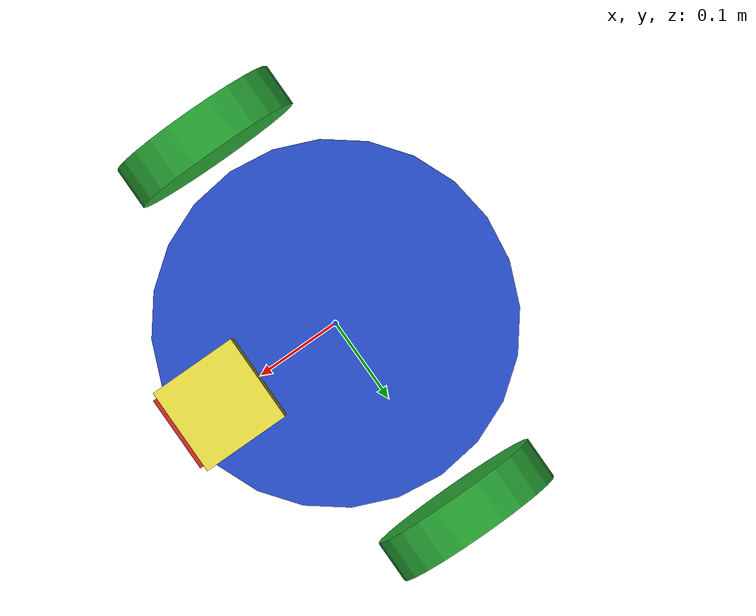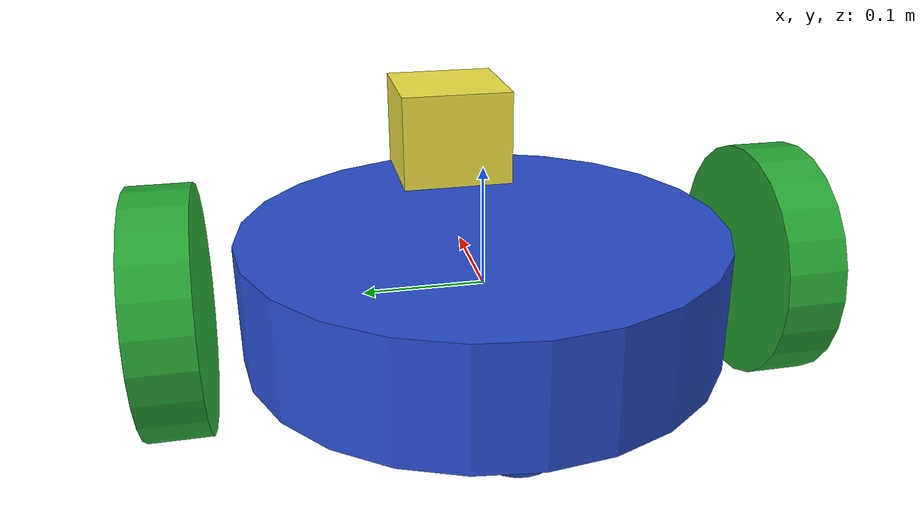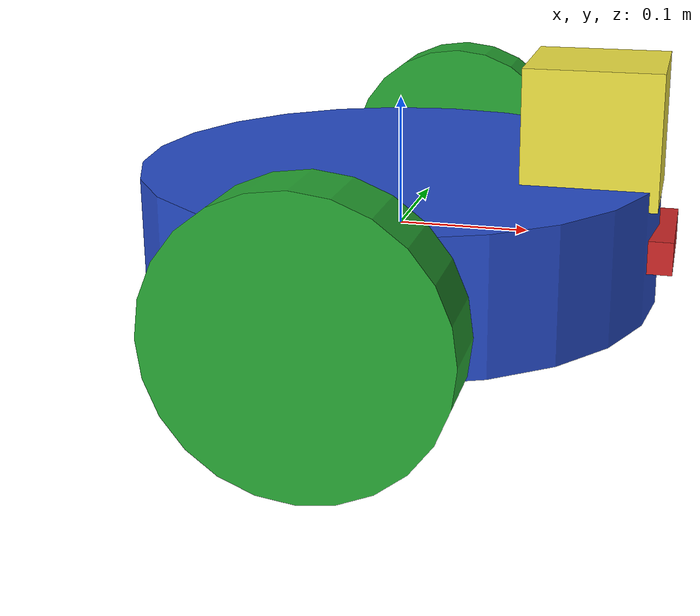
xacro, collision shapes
<?xml version='1.0'?>

<robot name="circle_bot_depth" xmlns:xacro="http://www.ros.org/wiki/xacro">
  <xacro:include filename="$(find slam_project)/urdf/circle_bot_depth.gazebo" />
  <link name="robot_footprint"></link>

  <joint name="robot_footprint_joint" type="fixed">
    <origin xyz="0 0 0" rpy="0 0 0" />
    <parent link="robot_footprint"/>
    <child link="chassis" />
  </joint>

  <joint type="fixed" name="camera_joint">
    <origin xyz="0.2 0 0" rpy="0 0 0"/>
    <child link="camera_link"/>
    <parent link="chassis"/>
  </joint>

  <joint name="camera_optical_joint" type="fixed">
    <origin xyz="0 0 0" rpy="-1.5707 0 -1.5707"/>
    <parent link="camera_link"/>
    <child link="camera_link_optical"/>
  </joint>

  <link name="camera_link_optical">
  </link>

 <link name='camera_link'>
    <inertial>
      <mass value="0.56"/>
      <inertia
          ixx="0.004" ixy="0" ixz="0"
          iyy="0.0005" iyz="0"
          izz="0.004"
      />
    </inertial>
    <collision name='camera_collision'>
      <origin xyz="0.0 0 0" rpy="0 0 0"/>
      <geometry>
        <box size="0.025 0.090 0.025"/>
      </geometry>
    </collision>
    <visual name='camera_visual'>
      <origin xyz="0.0 0 0" rpy="0 0 0"/>
      <geometry>
        <mesh filename="package://slam_project/meshes/realsense.dae" />
      </geometry>
    </visual>
  </link>

  <joint type="fixed" name="hokuyo_joint">
    <origin xyz="0.15 0 0.085" rpy="0 0 0"/>
    <child link="hokuyo"/>
    <parent link="chassis"/>
  </joint>

 <link name='hokuyo'>
    <inertial>
      <mass value="0.1"/>
      <inertia
          ixx="1e-6" ixy="0" ixz="0"
          iyy="1e-6" iyz="0"
          izz="1e-6"
      />
    </inertial>
    <collision name='hokuyo_collision'>
      <origin xyz="0.0 0 0" rpy="0 0 0"/>
      <geometry>
        <box size="0.1 0.1 0.1"/>
      </geometry>
    </collision>
    <visual name='hokuyo_visual'>
      <origin xyz="0.0 0 0" rpy="0 0 0"/>
      <geometry>
        <mesh filename="package://slam_project/meshes/hokuyo.dae"/>
      </geometry>
    </visual>
  </link>

  <joint type="continuous" name="left_wheel_hinge">
    <origin xyz="0 0.25 0" rpy="0 0 0"/>
    <child link="left_wheel"/>
    <parent link="chassis"/>
    <axis xyz="0 1 0" rpy="0 0 0"/>
    <limit effort="10000" velocity="1000"/>
    <dynamics damping="1.0" friction="1.0"/>
  </joint>

 <link name='left_wheel'>
    <inertial>
      <mass value="5.0"/>
      <origin xyz="0.0 0 0" rpy="0 1.5707 1.5707"/>
      <inertia
          ixx="0.1" ixy="0" ixz="0"
          iyy="0.1" iyz="0"
          izz="0.1"
      />
    </inertial>

    <collision name='left_wheel_collision'>
      <origin xyz="0 0 0" rpy="0 1.5707 1.5707"/>
      <geometry>
        <cylinder radius="0.1" length="0.05"/>
      </geometry>
    </collision>

    <visual name='left_wheel_visual'>
      <origin xyz="0 0 0" rpy="0 1.5707 1.5707"/>
      <geometry>
        <cylinder radius="0.1" length="0.05"/>
      </geometry>
    </visual>

  </link>

  <joint type="continuous" name="right_wheel_hinge">
    <origin xyz="0 -0.25 0" rpy="0 0 0"/>
    <child link="right_wheel"/>
    <parent link="chassis"/>
    <axis xyz="0 1 0" rpy="0 0 0"/>
    <limit effort="10000" velocity="1000"/>
    <dynamics damping="1.0" friction="1.0"/>
  </joint>

 <link name='right_wheel'>
    <inertial>
      <mass value="5.0"/>
      <origin xyz="0.0 0 0" rpy="0 1.5707 1.5707"/>
      <inertia
          ixx="0.1" ixy="0" ixz="0"
          iyy="0.1" iyz="0"
          izz="0.1"
      />
    </inertial>

    <collision name='right_wheel_collision'>
      <origin xyz="0 0 0" rpy="0 1.5707 1.5707"/>
      <geometry>
        <cylinder radius="0.1" length="0.05"/>
      </geometry>
    </collision>

    <visual name='right_wheel_visual'>
      <origin xyz="0 0 0" rpy="0 1.5707 1.5707"/>
      <geometry>
        <cylinder radius="0.1" length="0.05"/>
      </geometry>
    </visual>

  </link>

  <link name='chassis'>
    <pose>0 0 0.1 0 0 0</pose>
    <inertial>
      <mass value="15.0"/>
      <origin xyz="0.0 0 0" rpy=" 0 0 0"/>
      <inertia
          ixx="0.1" ixy="0" ixz="0"
          iyy="0.1" iyz="0"
          izz="0.1"
      />
    </inertial>

    <collision name='collision'>
      <origin xyz="0 0 0" rpy=" 0 0 0"/>
      <geometry>
        <cylinder radius=".2" length=".1"/>
      </geometry>
    </collision>

    <visual name='chassis_visual'>
      <origin xyz="0 0 0" rpy=" 0 0 0"/>
      <geometry>
        <cylinder radius=".2" length=".1"/>
      </geometry>
    </visual>

    <collision name='back_caster_collision'>
      <origin xyz="-0.12 0 -0.05" rpy=" 0 0 0"/>
      <geometry>
        <sphere radius="0.0499"/>
      </geometry>
    </collision>

    <visual name='back_caster_visual'>
      <origin xyz="-0.12 0 -0.05" rpy=" 0 0 0"/>
      <geometry>
        <sphere radius="0.05"/>
      </geometry>
    </visual>

    <collision name='front_caster_collision'>
      <origin xyz="0.12 0 -0.05" rpy=" 0 0 0"/>
      <geometry>
        <sphere radius="0.0499"/>
      </geometry>
    </collision>

    <visual name='front_caster_visual'>
      <origin xyz="0.12 0 -0.05" rpy=" 0 0 0"/>
      <geometry>
        <sphere radius="0.05"/>
      </geometry>
    </visual>

  </link>

</robot>
